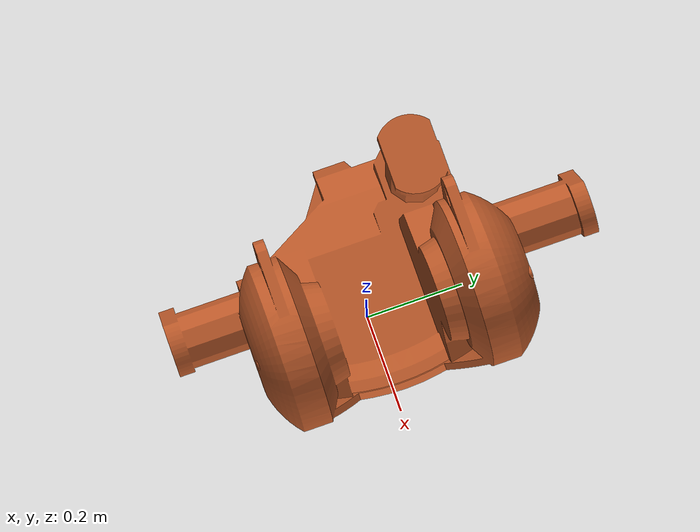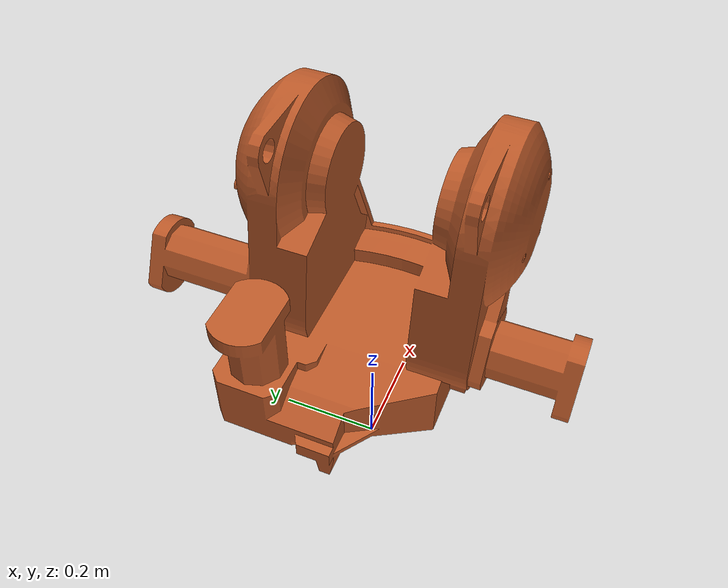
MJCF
<mujoco model="link_1">
  <default>
    <default class="visual">
      <geom group="2" type="mesh" contype="0" conaffinity="0"/>
    </default>
    <default class="collision">
      <geom group="3" type="mesh"/>
    </default>
  </default>
  <asset>
    <material name="colour_abb_orange.004" specular="0.5" shininess="0.25" rgba="0.737255 0.349020 0.160784 1.000000"/>
    <mesh file="link_1.obj"/>
  </asset>
  <worldbody>
    <body name="link_1">
      <geom material="colour_abb_orange.004" mesh="link_1" class="visual"/>
      <geom mesh="link_1" class="collision"/>
    </body>
  </worldbody>
</mujoco>
